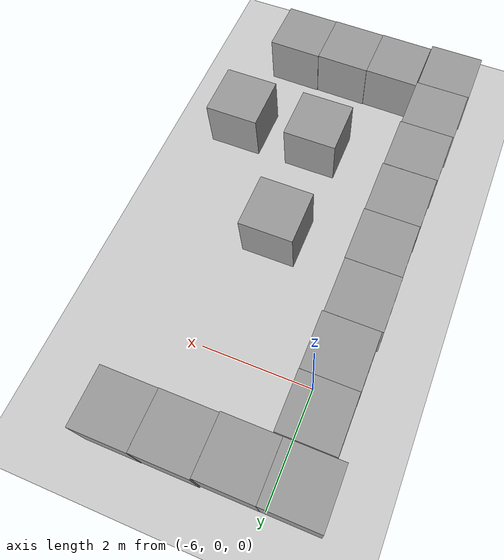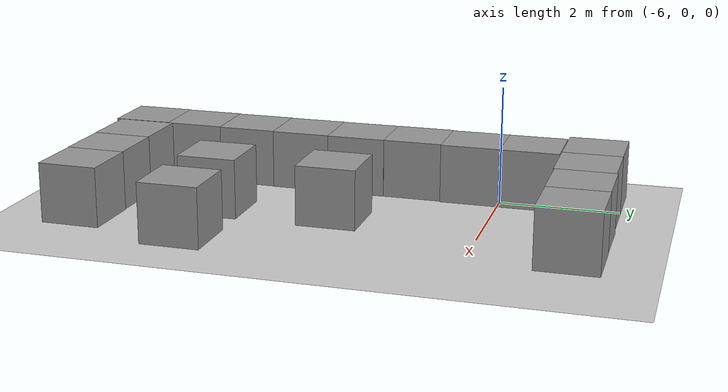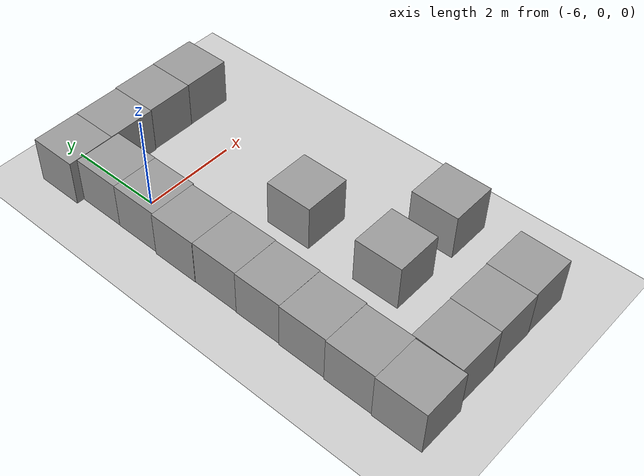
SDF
<sdf version="1.6">
 <world name="default">
  <model name="ground_plane">
   <static>1</static>
   <link name="link">
    <collision name="collision">
     <geometry><plane><normal>0 0 1</normal><size>100 100</size></plane></geometry>
     <surface><friction><ode><mu>100</mu><mu2>50</mu2></ode></friction></surface>
    </collision>
    <visual name="visual">
     <cast_shadows>0</cast_shadows>
     <geometry><plane><normal>0 0 1</normal><size>100 100</size></plane></geometry>
     <material>
      <script><uri>file://media/materials/scripts/gazebo.material</uri><name>Gazebo/Grey</name></script>
     </material>
    </visual>
   </link>
  </model>
  <model name="unit_box_0_36">
   <pose>-3.3432 -6.42122 0.5 0 0 -0.015514</pose>
   <link name="link">
    <inertial>
     <mass>1</mass>
     <inertia>
      <ixx>0.166667</ixx>
      <ixy>0</ixy>
      <ixz>0</ixz>
      <iyy>0.166667</iyy>
      <iyz>0</iyz>
      <izz>0.166667</izz>
     </inertia>
    </inertial>
    <collision name="collision"><geometry><box><size>1 1 1</size></box></geometry></collision>
    <visual name="visual">
     <geometry><box><size>1 1 1</size></box></geometry>
     <material>
      <script><name>Gazebo/Grey</name><uri>file://media/materials/scripts/gazebo.material</uri></script>
     </material>
    </visual>
   </link>
  </model>
  <model name="unit_box_0_38">
   <pose>-4.34326 -6.41689 0.499995 0 -1e-05 -0.015519</pose>
   <link name="link">
    <inertial>
     <mass>1</mass>
     <inertia>
      <ixx>0.166667</ixx>
      <ixy>0</ixy>
      <ixz>0</ixz>
      <iyy>0.166667</iyy>
      <iyz>0</iyz>
      <izz>0.166667</izz>
     </inertia>
    </inertial>
    <collision name="collision"><geometry><box><size>1 1 1</size></box></geometry></collision>
    <visual name="visual">
     <geometry><box><size>1 1 1</size></box></geometry>
     <material>
      <script><name>Gazebo/Grey</name><uri>file://media/materials/scripts/gazebo.material</uri></script>
     </material>
    </visual>
   </link>
  </model>
  <model name="unit_box_0_39">
   <pose>-5.34329 -6.41024 0.499995 0 -1e-05 -0.015524</pose>
   <link name="link">
    <inertial>
     <mass>1</mass>
     <inertia>
      <ixx>0.166667</ixx>
      <ixy>0</ixy>
      <ixz>0</ixz>
      <iyy>0.166667</iyy>
      <iyz>0</iyz>
      <izz>0.166667</izz>
     </inertia>
    </inertial>
    <collision name="collision"><geometry><box><size>1 1 1</size></box></geometry></collision>
    <visual name="visual">
     <geometry><box><size>1 1 1</size></box></geometry>
     <material>
      <script><name>Gazebo/Grey</name><uri>file://media/materials/scripts/gazebo.material</uri></script>
     </material>
    </visual>
   </link>
  </model>
  <model name="unit_box_0_40">
   <pose>-6.35595 -6.4899 0.499995 1e-05 -0 -0.002433</pose>
   <link name="link">
    <inertial>
     <mass>1</mass>
     <inertia>
      <ixx>0.166667</ixx>
      <ixy>0</ixy>
      <ixz>0</ixz>
      <iyy>0.166667</iyy>
      <iyz>0</iyz>
      <izz>0.166667</izz>
     </inertia>
    </inertial>
    <collision name="collision"><geometry><box><size>1 1 1</size></box></geometry></collision>
    <visual name="visual">
     <geometry><box><size>1 1 1</size></box></geometry>
     <material>
      <script><name>Gazebo/Grey</name><uri>file://media/materials/scripts/gazebo.material</uri></script>
     </material>
    </visual>
   </link>
  </model>
  <model name="unit_box_0_41">
   <pose>-6.33564 -5.48992 0.499995 -1e-05 -0 -0.002416</pose>
   <link name="link">
    <inertial>
     <mass>1</mass>
     <inertia>
      <ixx>0.166667</ixx>
      <ixy>0</ixy>
      <ixz>0</ixz>
      <iyy>0.166667</iyy>
      <iyz>0</iyz>
      <izz>0.166667</izz>
     </inertia>
    </inertial>
    <collision name="collision"><geometry><box><size>1 1 1</size></box></geometry></collision>
    <visual name="visual">
     <geometry><box><size>1 1 1</size></box></geometry>
     <material>
      <script><name>Gazebo/Grey</name><uri>file://media/materials/scripts/gazebo.material</uri></script>
     </material>
    </visual>
   </link>
  </model>
  <model name="unit_box_0_42">
   <pose>-6.31365 -4.48966 0.499995 -1e-05 -0 -0.001812</pose>
   <link name="link">
    <inertial>
     <mass>1</mass>
     <inertia>
      <ixx>0.166667</ixx>
      <ixy>0</ixy>
      <ixz>0</ixz>
      <iyy>0.166667</iyy>
      <iyz>0</iyz>
      <izz>0.166667</izz>
     </inertia>
    </inertial>
    <collision name="collision"><geometry><box><size>1 1 1</size></box></geometry></collision>
    <visual name="visual">
     <geometry><box><size>1 1 1</size></box></geometry>
     <material>
      <script><name>Gazebo/Grey</name><uri>file://media/materials/scripts/gazebo.material</uri></script>
     </material>
    </visual>
   </link>
  </model>
  <model name="unit_box_0_43">
   <pose>-6.29683 -3.48884 0.499995 0 -1e-05 -0.000123</pose>
   <link name="link">
    <inertial>
     <mass>1</mass>
     <inertia>
      <ixx>0.166667</ixx>
      <ixy>0</ixy>
      <ixz>0</ixz>
      <iyy>0.166667</iyy>
      <iyz>0</iyz>
      <izz>0.166667</izz>
     </inertia>
    </inertial>
    <collision name="collision"><geometry><box><size>1 1 1</size></box></geometry></collision>
    <visual name="visual">
     <geometry><box><size>1 1 1</size></box></geometry>
     <material>
      <script><name>Gazebo/Grey</name><uri>file://media/materials/scripts/gazebo.material</uri></script>
     </material>
    </visual>
   </link>
  </model>
  <model name="unit_box_0_44">
   <pose>-6.28773 -2.48853 0.499995 1e-05 -0 0.000517</pose>
   <link name="link">
    <inertial>
     <mass>1</mass>
     <inertia>
      <ixx>0.166667</ixx>
      <ixy>0</ixy>
      <ixz>0</ixz>
      <iyy>0.166667</iyy>
      <iyz>0</iyz>
      <izz>0.166667</izz>
     </inertia>
    </inertial>
    <collision name="collision"><geometry><box><size>1 1 1</size></box></geometry></collision>
    <visual name="visual">
     <geometry><box><size>1 1 1</size></box></geometry>
     <material>
      <script><name>Gazebo/Grey</name><uri>file://media/materials/scripts/gazebo.material</uri></script>
     </material>
    </visual>
   </link>
  </model>
  <model name="unit_box_0_45">
   <pose>-6.29357 -1.48838 0.499995 -1e-05 -0 0.000796</pose>
   <link name="link">
    <inertial>
     <mass>1</mass>
     <inertia>
      <ixx>0.166667</ixx>
      <ixy>0</ixy>
      <ixz>0</ixz>
      <iyy>0.166667</iyy>
      <iyz>0</iyz>
      <izz>0.166667</izz>
     </inertia>
    </inertial>
    <collision name="collision"><geometry><box><size>1 1 1</size></box></geometry></collision>
    <visual name="visual">
     <geometry><box><size>1 1 1</size></box></geometry>
     <material>
      <script><name>Gazebo/Grey</name><uri>file://media/materials/scripts/gazebo.material</uri></script>
     </material>
    </visual>
   </link>
  </model>
  <model name="unit_box_0_46">
   <pose>-6.26656 -0.488265 0.499995 9e-06 -0 0.000992</pose>
   <link name="link">
    <inertial>
     <mass>1</mass>
     <inertia>
      <ixx>0.166667</ixx>
      <ixy>0</ixy>
      <ixz>0</ixz>
      <iyy>0.166667</iyy>
      <iyz>0</iyz>
      <izz>0.166667</izz>
     </inertia>
    </inertial>
    <collision name="collision"><geometry><box><size>1 1 1</size></box></geometry></collision>
    <visual name="visual">
     <geometry><box><size>1 1 1</size></box></geometry>
     <material>
      <script><name>Gazebo/Grey</name><uri>file://media/materials/scripts/gazebo.material</uri></script>
     </material>
    </visual>
   </link>
  </model>
  <model name="unit_box_0_47">
   <pose>-6.26408 0.511771 0.499995 -1e-05 -0 0.001035</pose>
   <link name="link">
    <inertial>
     <mass>1</mass>
     <inertia>
      <ixx>0.166667</ixx>
      <ixy>0</ixy>
      <ixz>0</ixz>
      <iyy>0.166667</iyy>
      <iyz>0</iyz>
      <izz>0.166667</izz>
     </inertia>
    </inertial>
    <collision name="collision"><geometry><box><size>1 1 1</size></box></geometry></collision>
    <visual name="visual">
     <geometry><box><size>1 1 1</size></box></geometry>
     <material>
      <script><name>Gazebo/Grey</name><uri>file://media/materials/scripts/gazebo.material</uri></script>
     </material>
    </visual>
   </link>
  </model>
  <model name="unit_box_0_50">
   <pose>-6.42247 1.5235 0.499995 1e-05 -0 0.00122</pose>
   <link name="link">
    <inertial>
     <mass>1</mass>
     <inertia>
      <ixx>0.166667</ixx>
      <ixy>0</ixy>
      <ixz>0</ixz>
      <iyy>0.166667</iyy>
      <iyz>0</iyz>
      <izz>0.166667</izz>
     </inertia>
    </inertial>
    <collision name="collision"><geometry><box><size>1 1 1</size></box></geometry></collision>
    <visual name="visual">
     <geometry><box><size>1 1 1</size></box></geometry>
     <material>
      <script><name>Gazebo/Grey</name><uri>file://media/materials/scripts/gazebo.material</uri></script>
     </material>
    </visual>
   </link>
  </model>
  <model name="unit_box_0_51">
   <pose>-5.42247 1.52676 0.499995 1e-05 -0 0.001217</pose>
   <link name="link">
    <inertial>
     <mass>1</mass>
     <inertia>
      <ixx>0.166667</ixx>
      <ixy>0</ixy>
      <ixz>0</ixz>
      <iyy>0.166667</iyy>
      <iyz>0</iyz>
      <izz>0.166667</izz>
     </inertia>
    </inertial>
    <collision name="collision"><geometry><box><size>1 1 1</size></box></geometry></collision>
    <visual name="visual">
     <geometry><box><size>1 1 1</size></box></geometry>
     <material>
      <script><name>Gazebo/Grey</name><uri>file://media/materials/scripts/gazebo.material</uri></script>
     </material>
    </visual>
   </link>
  </model>
  <model name="unit_box_0_52">
   <pose>-4.42241 1.54835 0.499995 -1e-05 -0 0.001066</pose>
   <link name="link">
    <inertial>
     <mass>1</mass>
     <inertia>
      <ixx>0.166667</ixx>
      <ixy>0</ixy>
      <ixz>0</ixz>
      <iyy>0.166667</iyy>
      <iyz>0</iyz>
      <izz>0.166667</izz>
     </inertia>
    </inertial>
    <collision name="collision"><geometry><box><size>1 1 1</size></box></geometry></collision>
    <visual name="visual">
     <geometry><box><size>1 1 1</size></box></geometry>
     <material>
      <script><name>Gazebo/Grey</name><uri>file://media/materials/scripts/gazebo.material</uri></script>
     </material>
    </visual>
   </link>
  </model>
  <model name="unit_box_0_53">
   <pose>-3.42238 1.55507 0.499995 0 -1e-05 0.001023</pose>
   <link name="link">
    <inertial>
     <mass>1</mass>
     <inertia>
      <ixx>0.166667</ixx>
      <ixy>0</ixy>
      <ixz>0</ixz>
      <iyy>0.166667</iyy>
      <iyz>0</iyz>
      <izz>0.166667</izz>
     </inertia>
    </inertial>
    <collision name="collision"><geometry><box><size>1 1 1</size></box></geometry></collision>
    <visual name="visual">
     <geometry><box><size>1 1 1</size></box></geometry>
     <material>
      <script><name>Gazebo/Grey</name><uri>file://media/materials/scripts/gazebo.material</uri></script>
     </material>
    </visual>
   </link>
  </model>
  <model name="unit_box_0_63">
   <pose>-2.82762 -4.47187 0.499995 -1e-05 0 0</pose>
   <link name="link">
    <inertial>
     <mass>1</mass>
     <inertia>
      <ixx>0.166667</ixx>
      <ixy>0</ixy>
      <ixz>0</ixz>
      <iyy>0.166667</iyy>
      <iyz>0</iyz>
      <izz>0.166667</izz>
     </inertia>
    </inertial>
    <collision name="collision"><geometry><box><size>1 1 1</size></box></geometry></collision>
    <visual name="visual">
     <geometry><box><size>1 1 1</size></box></geometry>
     <material>
      <script><name>Gazebo/Grey</name><uri>file://media/materials/scripts/gazebo.material</uri></script>
     </material>
    </visual>
   </link>
  </model>
  <model name="unit_box_0_64">
   <pose>-4.39022 -4.47171 0.499995 0 -1e-05 0</pose>
   <link name="link">
    <inertial>
     <mass>1</mass>
     <inertia>
      <ixx>0.166667</ixx>
      <ixy>0</ixy>
      <ixz>0</ixz>
      <iyy>0.166667</iyy>
      <iyz>0</iyz>
      <izz>0.166667</izz>
     </inertia>
    </inertial>
    <collision name="collision"><geometry><box><size>1 1 1</size></box></geometry></collision>
    <visual name="visual">
     <geometry><box><size>1 1 1</size></box></geometry>
     <material>
      <script><name>Gazebo/Grey</name><uri>file://media/materials/scripts/gazebo.material</uri></script>
     </material>
    </visual>
   </link>
  </model>
  <model name="unit_box_0_69">
   <pose>-4.37854 -2.43494 0.499995 0 -1e-05 0</pose>
   <link name="link">
    <inertial>
     <mass>1</mass>
     <inertia>
      <ixx>0.166667</ixx>
      <ixy>0</ixy>
      <ixz>0</ixz>
      <iyy>0.166667</iyy>
      <iyz>0</iyz>
      <izz>0.166667</izz>
     </inertia>
    </inertial>
    <collision name="collision"><geometry><box><size>1 1 1</size></box></geometry></collision>
    <visual name="visual">
     <geometry><box><size>1 1 1</size></box></geometry>
     <material>
      <script><name>Gazebo/Grey</name><uri>file://media/materials/scripts/gazebo.material</uri></script>
     </material>
    </visual>
   </link>
  </model>
 </world>
</sdf>
